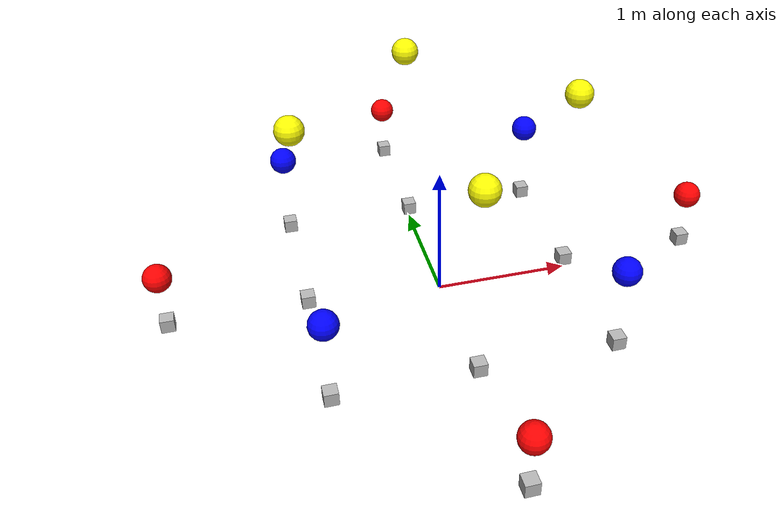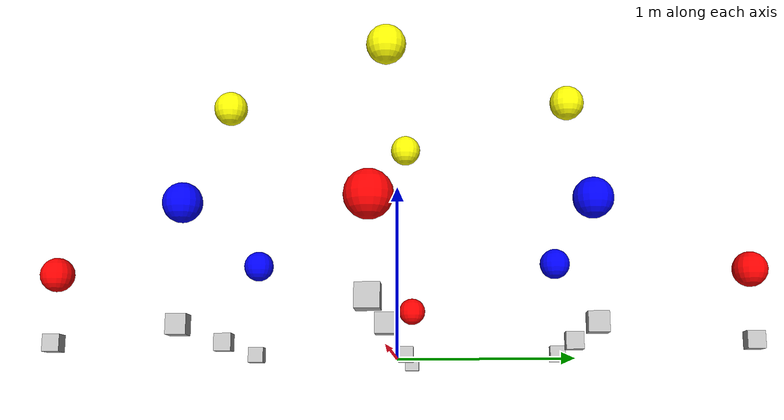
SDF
<?xml version="1.0" ?>
<sdf version="1.6">
  <model name="balloons">
    <!--yellow 1.5m 10point-->
    <include>
      <uri>model://balloon_yellow.sdf</uri>
      <pose>0 -1 0 0 0 0</pose>
      <name>balloon_yellow1</name>
    </include>
    <include>
      <uri>model://balloon_yellow.sdf</uri>
      <pose>0 1 0 0 0 0</pose>
      <name>balloon_yellow2</name>
    </include>
    <include>
      <uri>model://balloon_yellow.sdf</uri>
      <pose>1 0 0 0 0 0</pose>
      <name>balloon_yellow3</name>
    </include>
    <include>
      <uri>model://balloon_yellow.sdf</uri>
      <pose>-1 0 0 0 0 0</pose>
      <name>balloon_yellow4</name>
    </include>

    <!--blue 0.7m -10point-->
    <include>
      <uri>model://balloon_blue.sdf</uri>
      <pose>1 1 0 0 0 0</pose>
      <name>balloon_blue1</name>
    </include>
    <include>
      <uri>model://balloon_blue.sdf</uri>
      <pose>-1 1 0 0 0 0</pose>
      <name>balloon_blue2</name>
    </include>
    <include>
      <uri>model://balloon_blue.sdf</uri>
      <pose>1 -1 0 0 0 0</pose>
      <name>balloon_blue3</name>
    </include>
    <include>
      <uri>model://balloon_blue.sdf</uri>
      <pose>-1 -1 0 0 0 0</pose>
      <name>balloon_blue4</name>
    </include>

    <!--red 0.5m 30point-->
    <include>
      <uri>model://balloon_red.sdf</uri>
      <pose>2 0 0 0 0 0</pose>
      <name>balloon_red1</name>
    </include>
    <include>
      <uri>model://balloon_red.sdf</uri>
      <pose>-2 0 0 0 0 0</pose>
      <name>balloon_red2</name>
    </include>
    <include>
      <uri>model://balloon_red.sdf</uri>
      <pose>0 2 0 0 0 0</pose>
      <name>balloon_red3</name>
    </include>
    <include>
      <uri>model://balloon_red.sdf</uri>
      <pose>0 -2 0 0 0 0</pose>
      <name>balloon_red4</name>
    </include>
  </model>
</sdf>

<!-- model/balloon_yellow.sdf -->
<sdf version="1.6">
  <model name="balloon">
    <!-- balloon -->
    <link name="balloon_link">
      <pose>0.0 0.0 1.5 0.0 0.0 0.0</pose>
      <collision name="collision">
          <geometry>
            <sphere>
              <radius>0.1</radius>
            </sphere>
          </geometry>
      </collision>
      <inertial>
        <mass>0.1</mass>
        <inertia>
            <ixx>1.000000</ixx>
            <ixy>0</ixy>
            <ixz>0</ixz>
            <iyy>1.0</iyy>
            <iyz>0</iyz>
            <izz>1.0</izz>
        </inertia>
      </inertial>
      <visual name="balloon_visual">
        <geometry>
            <sphere>
              <radius>0.1</radius>
            </sphere>
        </geometry>
        <material>
          <ambient>0.9 0.9 0.9 1</ambient>
          <diffuse>1.0 1.0 0.0 1</diffuse>
          <specular>0 0 0 0</specular>
          <emissive>0 0 0 1</emissive>
        </material>
      </visual>
    </link>

    <!-- weight -->
    <link name="weight_link">
      <pose>0.0 0.0 0.1 0.0 0.0 0.0</pose>
      <collision name="collision">
          <geometry>
            <box>
                <size>0.1 0.1 0.1</size>
            </box>
          </geometry>
      </collision>
      <inertial>
        <mass>10.0</mass>
        <inertia>
            <ixx>1.000000</ixx>
            <ixy>0</ixy>
            <ixz>0</ixz>
            <iyy>1.0</iyy>
            <iyz>0</iyz>
            <izz>1.0</izz>
        </inertia>
      </inertial>
      <visual name="weight_visual">
        <geometry>
            <box>
                <size>0.1 0.1 0.1</size>
            </box>
        </geometry>
      </visual>
    </link>

    <!-- balloon-weight joint -->
    <joint name="balloon_joint" type="fixed">
      <parent>weight_link</parent>
      <child>balloon_link</child>
      <pose>0 0 0 0 0 0</pose>
      <axis>
        <xyz>1 0 0</xyz>
        <limit>
            <lower>-1e+12</lower>
            <upper>1e+12</upper>
            <effort>-1</effort>
            <velocity>-1</velocity>
        </limit>
      </axis>
    </joint>
  </model>
</sdf>

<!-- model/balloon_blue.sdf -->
<sdf version="1.6">
  <model name="balloon">
    <!-- balloon -->
    <link name="balloon_link">
      <pose>0.0 0.0 0.7 0.0 0.0 0.0</pose>
      <collision name="collision">
          <geometry>
            <sphere>
              <radius>0.1</radius>
            </sphere>
          </geometry>
      </collision>
      <inertial>
        <mass>0.1</mass>
        <inertia>
            <ixx>1.000000</ixx>
            <ixy>0</ixy>
            <ixz>0</ixz>
            <iyy>1.0</iyy>
            <iyz>0</iyz>
            <izz>1.0</izz>
        </inertia>
      </inertial>
      <visual name="balloon_visual">
        <geometry>
            <sphere>
              <radius>0.1</radius>
            </sphere>
        </geometry>
        <material>
          <ambient>0.9 0.9 0.9 1</ambient>
          <diffuse>0.0 0.0 1.0 1</diffuse>
          <specular>0 0 0 0</specular>
          <emissive>0 0 0 1</emissive>
        </material>
      </visual>
    </link>

    <!-- weight -->
    <link name="weight_link">
      <pose>0.0 0.0 0.1 0.0 0.0 0.0</pose>
      <collision name="collision">
          <geometry>
            <box>
                <size>0.1 0.1 0.1</size>
            </box>
          </geometry>
      </collision>
      <inertial>
        <mass>10.0</mass>
        <inertia>
            <ixx>1.000000</ixx>
            <ixy>0</ixy>
            <ixz>0</ixz>
            <iyy>1.0</iyy>
            <iyz>0</iyz>
            <izz>1.0</izz>
        </inertia>
      </inertial>
      <visual name="weight_visual">
        <geometry>
            <box>
                <size>0.1 0.1 0.1</size>
            </box>
        </geometry>
      </visual>
    </link>

    <!-- balloon-weight joint -->
    <joint name="balloon_joint" type="fixed">
      <parent>weight_link</parent>
      <child>balloon_link</child>
      <pose>0 0 0 0 0 0</pose>
      <axis>
        <xyz>1 0 0</xyz>
        <limit>
            <lower>-1e+12</lower>
            <upper>1e+12</upper>
            <effort>-1</effort>
            <velocity>-1</velocity>
        </limit>
      </axis>
    </joint>
  </model>
</sdf>

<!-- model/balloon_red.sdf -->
<sdf version="1.6">
  <model name="balloon">
    <!-- balloon -->
    <link name="balloon_link">
      <pose>0.0 0.0 0.5 0.0 0.0 0.0</pose>
      <collision name="collision">
          <geometry>
            <sphere>
              <radius>0.1</radius>
            </sphere>
          </geometry>
      </collision>
      <inertial>
        <mass>0.1</mass>
        <inertia>
            <ixx>1.000000</ixx>
            <ixy>0</ixy>
            <ixz>0</ixz>
            <iyy>1.0</iyy>
            <iyz>0</iyz>
            <izz>1.0</izz>
        </inertia>
      </inertial>
      <visual name="balloon_visual">
        <geometry>
            <sphere>
              <radius>0.1</radius>
            </sphere>
        </geometry>
        <material>
          <ambient>0.9 0.9 0.9 1</ambient>
          <diffuse>1.0 0.0 0.0 1</diffuse>
          <specular>0 0 0 0</specular>
          <emissive>0 0 0 1</emissive>
        </material>
      </visual>
    </link>

    <!-- weight -->
    <link name="weight_link">
      <pose>0.0 0.0 0.1 0.0 0.0 0.0</pose>
      <collision name="collision">
          <geometry>
            <box>
                <size>0.1 0.1 0.1</size>
            </box>
          </geometry>
      </collision>
      <inertial>
        <mass>10.0</mass>
        <inertia>
            <ixx>1.000000</ixx>
            <ixy>0</ixy>
            <ixz>0</ixz>
            <iyy>1.0</iyy>
            <iyz>0</iyz>
            <izz>1.0</izz>
        </inertia>
      </inertial>
      <visual name="weight_visual">
        <geometry>
            <box>
                <size>0.1 0.1 0.1</size>
            </box>
        </geometry>
      </visual>
    </link>

    <!-- balloon-weight joint -->
    <joint name="balloon_joint" type="fixed">
      <parent>weight_link</parent>
      <child>balloon_link</child>
      <pose>0 0 0 0 0 0</pose>
      <axis>
        <xyz>1 0 0</xyz>
        <limit>
            <lower>-1e+12</lower>
            <upper>1e+12</upper>
            <effort>-1</effort>
            <velocity>-1</velocity>
        </limit>
      </axis>
    </joint>
  </model>
</sdf>
